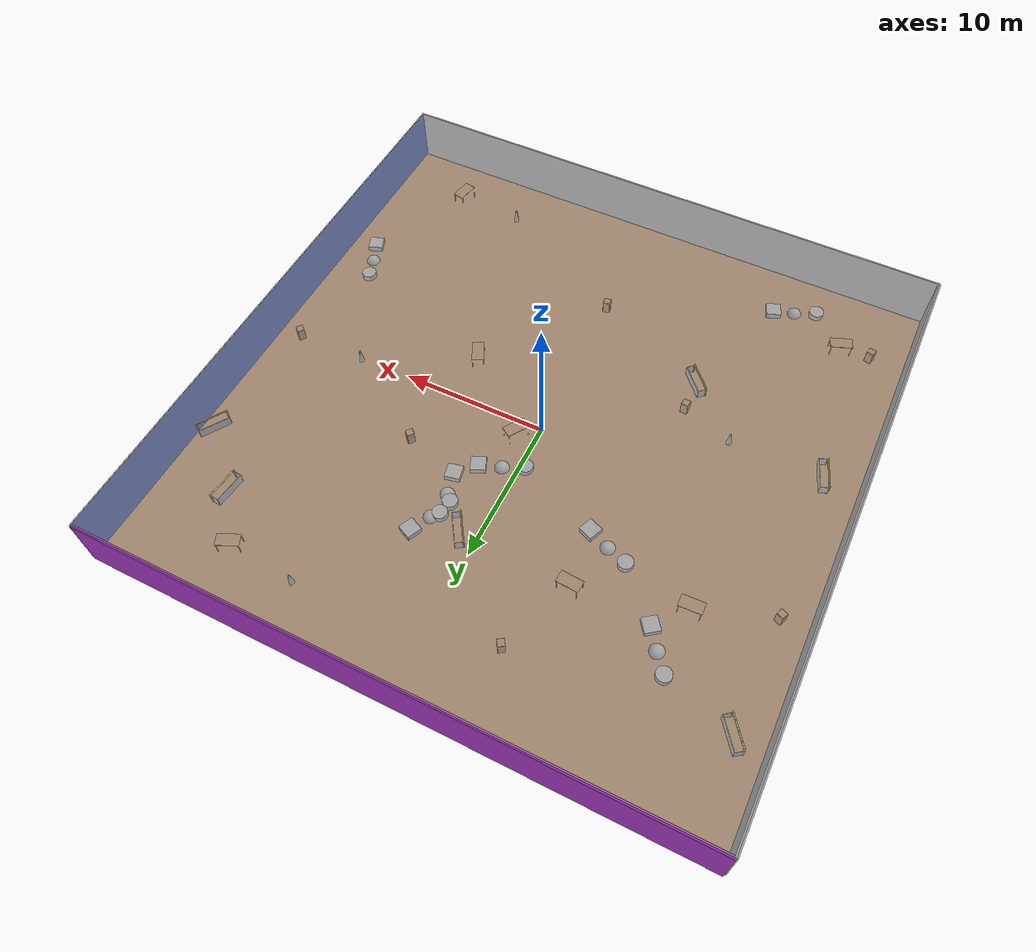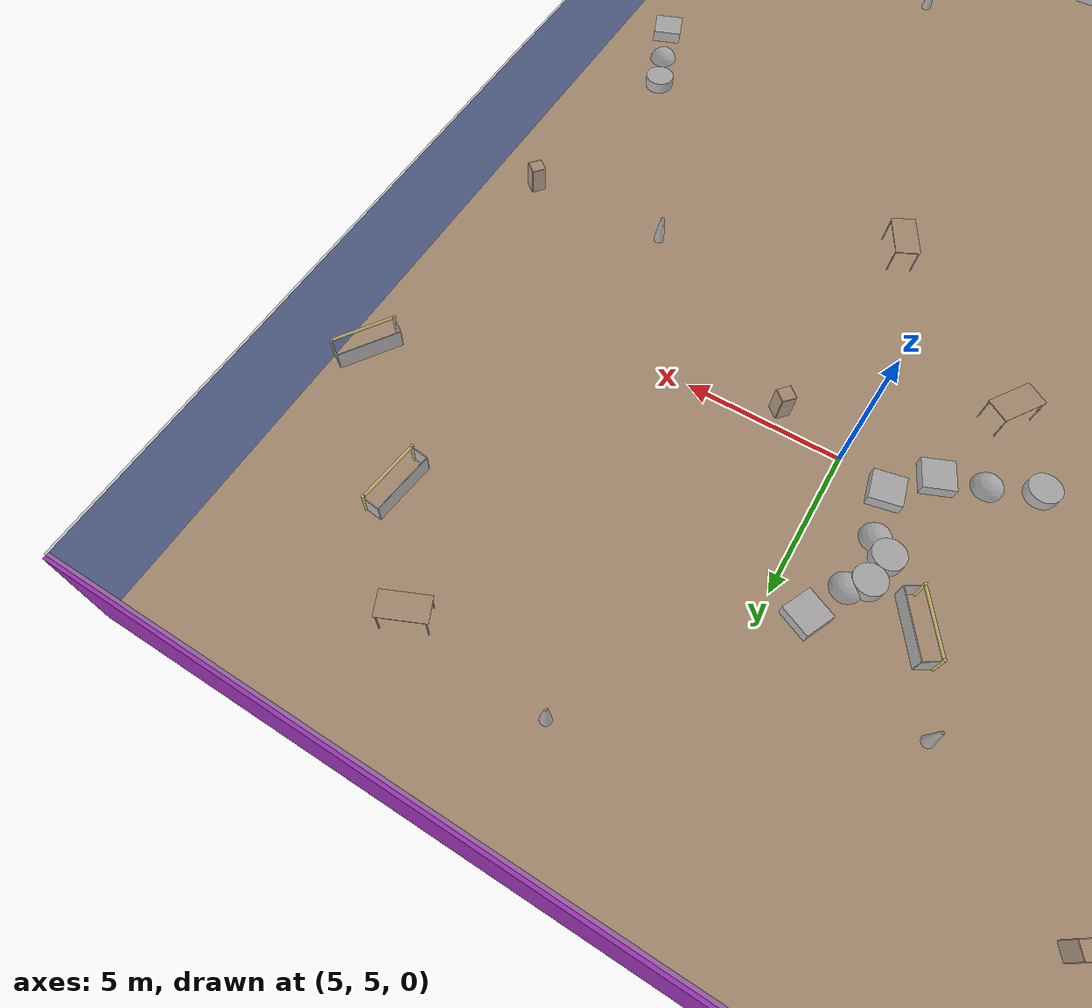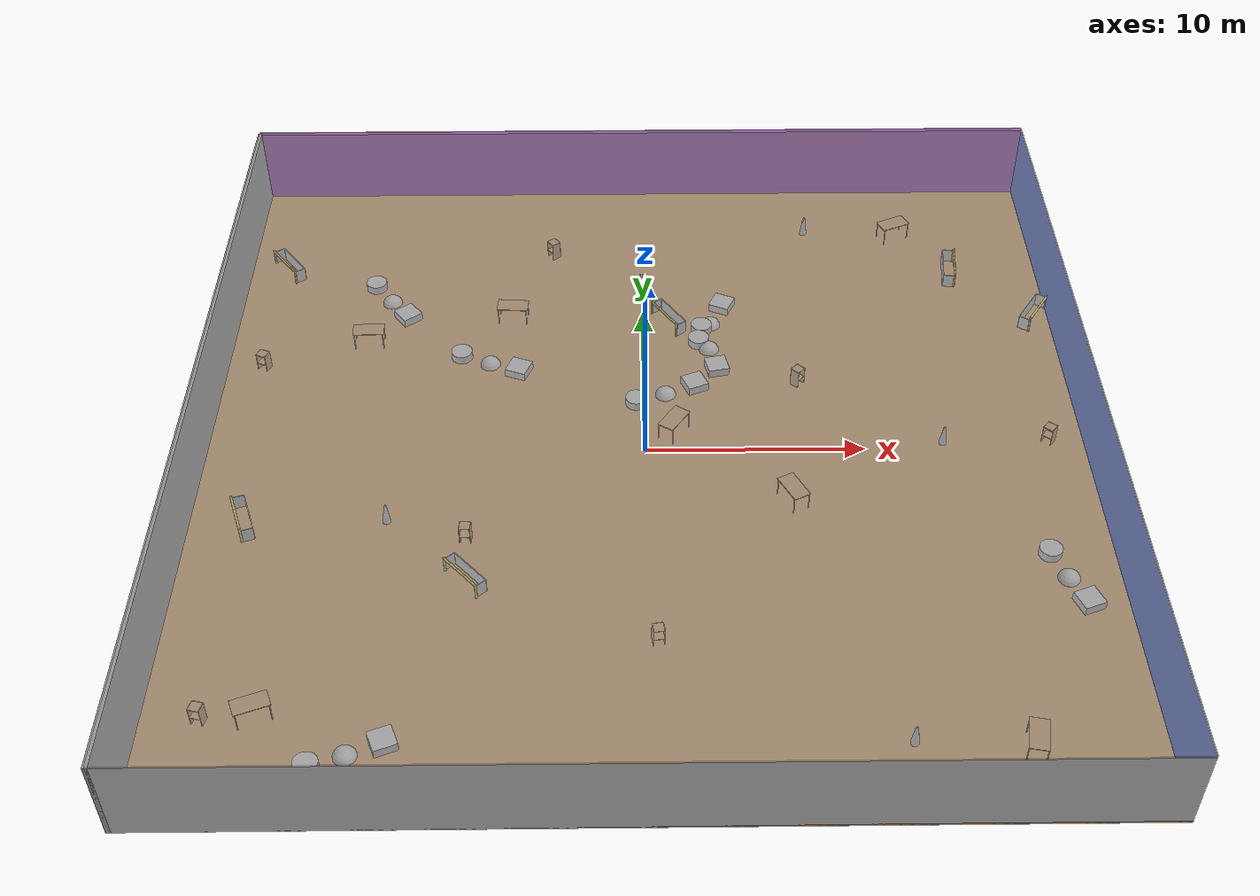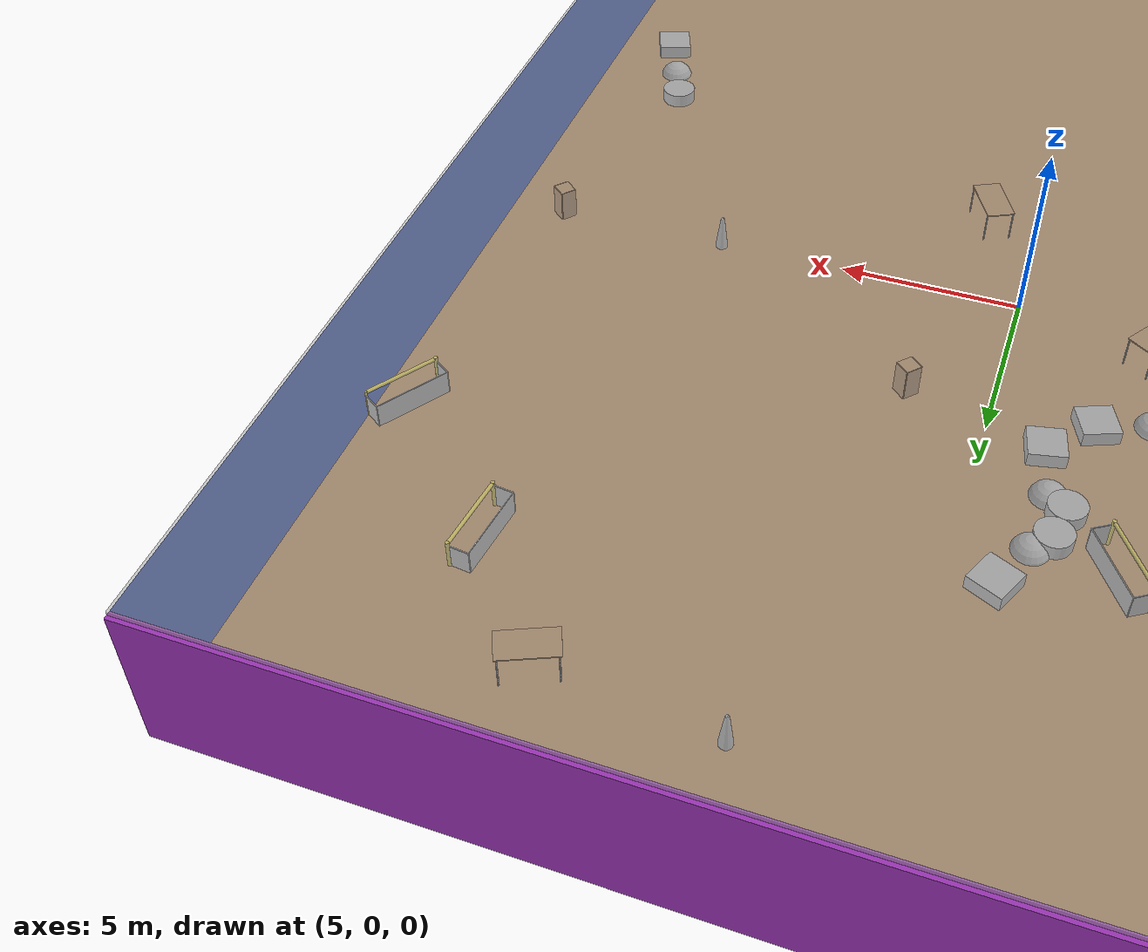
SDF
<sdf version="1.4">
 <world name="default">
  <physics type="ode">
   <max_step_size>0.001</max_step_size>
   <real_time_factor>1</real_time_factor>
   <real_time_update_rate>1000</real_time_update_rate>
   <gravity>0 0 -9.8</gravity>
  </physics>
  <scene><ambient>0.4 0.4 0.4 1</ambient><background>0.7 0.7 0.7 1</background><shadows>1</shadows></scene>
  <model name="Surrounding">
   <static>1</static>
   <link name="Ceiling">
    <collision name="Ceiling_Collision"><geometry><box><size>40 40 0.1</size></box></geometry></collision>
    <visual name="Ceiling_Visual">
     <geometry><box><size>40 40 0.1</size></box></geometry>
     <material>
      <script><uri>file://media/materials/scripts/gazebo.material</uri><name>Gazebo/GreyTransparent</name></script>
     </material>
    </visual>
    <pose>0 0 4.05 0 0 0</pose>
   </link>
   <link name="Wall_South">
    <collision name="Wall_South_Collision">
     <geometry><box><size>40 0 4</size></box></geometry>
     <pose>0 0 2 0 -0 0</pose>
    </collision>
    <visual name="Wall_South_Visual">
     <pose>0 0 2 0 -0 0</pose>
     <geometry><box><size>40 0 4</size></box></geometry>
     <material>
      <script><uri>file://media/materials/scripts/gazebo.material</uri><name>Gazebo/LightOn</name></script>
     </material>
    </visual>
    <velocity_decay><linear>0</linear><angular>0</angular></velocity_decay>
    <pose>0 -20 0 0 -0 0</pose>
   </link>
   <link name="Wall_East">
    <collision name="Wall_21_Collision">
     <geometry><box><size>40 0 4</size></box></geometry>
     <pose>0 0 2 0 -0 0</pose>
    </collision>
    <visual name="Wall_21_Visual">
     <pose>0 0 2 0 -0 0</pose>
     <geometry><box><size>40 0 4</size></box></geometry>
     <material>
      <script><uri>file://media/materials/scripts/gazebo.material</uri><name>Gazebo/BlueGlow</name></script>
     </material>
    </visual>
    <velocity_decay><linear>0</linear><angular>0</angular></velocity_decay>
    <pose>20 0 0 0 -0 1.5708</pose>
   </link>
   <link name="Wall_North">
    <collision name="Wall_22_Collision">
     <geometry><box><size>40 0.2 4</size></box></geometry>
     <pose>0 0 2 0 -0 0</pose>
    </collision>
    <visual name="Wall_22_Visual">
     <pose>0 0 2 0 -0 0</pose>
     <geometry><box><size>40 0.2 4</size></box></geometry>
     <material>
      <script><uri>file://media/materials/scripts/gazebo.material</uri><name>Gazebo/PurpleGlow</name></script>
     </material>
    </visual>
    <velocity_decay><linear>0</linear><angular>0</angular></velocity_decay>
    <pose>0 20 0 0 -0 0</pose>
   </link>
   <link name="Wall_West">
    <collision name="Wall_23_Collision">
     <geometry><box><size>40 0.2 4</size></box></geometry>
     <pose>0 0 2 0 -0 0</pose>
    </collision>
    <visual name="Wall_23_Visual">
     <pose>0 0 2 0 -0 0</pose>
     <geometry><box><size>40 0.2 4</size></box></geometry>
     <material>
      <script><uri>file://media/materials/scripts/gazebo.material</uri><name>Gazebo/Grey</name></script>
     </material>
    </visual>
    <velocity_decay><linear>0</linear><angular>0</angular></velocity_decay>
    <pose>-20 0 0 0 0 -1.5708</pose>
   </link>
   <link name="Ground_link">
    <collision name="collision">
     <pose>0 0 .05 0 -0 0</pose>
     <geometry><box><size>40 40 0.1</size></box></geometry>
    </collision>
    <visual name="visual">
     <pose>0 0 .05 0 -0 0</pose>
     <geometry><box><size>40 40 0.1</size></box></geometry>
     <material>
      <script><uri>file://media/materials/scripts/gazebo.material</uri><name>Gazebo/WoodPallet</name></script>
     </material>
    </visual>
   </link>
   <static>1</static>
  </model>
  <spherical_coordinates>
   <surface_model>EARTH_WGS84</surface_model>
   <latitude_deg>0</latitude_deg>
   <longitude_deg>0</longitude_deg>
   <elevation>0</elevation>
   <heading_deg>0</heading_deg>
  </spherical_coordinates>
  <light name="lightball_0" type="diffuse">
   <diffuse>0.8 0.8 0.8 1</diffuse>
   <specular>0.2 0.2 0.2 1</specular>
   <attenuation>
    <range>100</range>
    <constant>0.7</constant>
    <linear>0.01</linear>
    <quadratic>0.001</quadratic>
   </attenuation>
   <direction>-0.5 0.1 -0.9</direction>
   <pose>16.7396377912 18.5528470208 2.04238367935 0 0 0</pose>
  </light>
  <light name="lightball_1" type="diffuse">
   <diffuse>0.8 0.8 0.8 1</diffuse>
   <specular>0.2 0.2 0.2 1</specular>
   <attenuation>
    <range>100</range>
    <constant>0.7</constant>
    <linear>0.01</linear>
    <quadratic>0.001</quadratic>
   </attenuation>
   <direction>-0.5 0.1 -0.9</direction>
   <pose>18.9722573075 9.26306922568 0.672082649328 0 0 0</pose>
  </light>
  <light name="lightball_2" type="diffuse">
   <diffuse>0.8 0.8 0.8 1</diffuse>
   <specular>0.2 0.2 0.2 1</specular>
   <attenuation>
    <range>100</range>
    <constant>0.7</constant>
    <linear>0.01</linear>
    <quadratic>0.001</quadratic>
   </attenuation>
   <direction>-0.5 0.1 -0.9</direction>
   <pose>7.96845531034 -8.42015809306 1.44713730399 0 0 0</pose>
  </light>
  <light name="lightball_3" type="diffuse">
   <diffuse>0.8 0.8 0.8 1</diffuse>
   <specular>0.2 0.2 0.2 1</specular>
   <attenuation>
    <range>100</range>
    <constant>0.7</constant>
    <linear>0.01</linear>
    <quadratic>0.001</quadratic>
   </attenuation>
   <direction>-0.5 0.1 -0.9</direction>
   <pose>0.398397689132 2.42654706262 3.46005175922 0 0 0</pose>
  </light>
  <light name="lightball_4" type="diffuse">
   <diffuse>0.8 0.8 0.8 1</diffuse>
   <specular>0.2 0.2 0.2 1</specular>
   <attenuation>
    <range>100</range>
    <constant>0.7</constant>
    <linear>0.01</linear>
    <quadratic>0.001</quadratic>
   </attenuation>
   <direction>-0.5 0.1 -0.9</direction>
   <pose>0.337475035103 16.2464355308 1.47479923938 0 0 0</pose>
  </light>
  <light name="lightball_5" type="diffuse">
   <diffuse>0.8 0.8 0.8 1</diffuse>
   <specular>0.2 0.2 0.2 1</specular>
   <attenuation>
    <range>100</range>
    <constant>0.7</constant>
    <linear>0.01</linear>
    <quadratic>0.001</quadratic>
   </attenuation>
   <direction>-0.5 0.1 -0.9</direction>
   <pose>5.89862419069 5.34433789733 2.77562965161 0 0 0</pose>
  </light>
  <light name="lightball_6" type="diffuse">
   <diffuse>0.8 0.8 0.8 1</diffuse>
   <specular>0.2 0.2 0.2 1</specular>
   <attenuation>
    <range>100</range>
    <constant>0.7</constant>
    <linear>0.01</linear>
    <quadratic>0.001</quadratic>
   </attenuation>
   <direction>-0.5 0.1 -0.9</direction>
   <pose>18.5414036786 1.84324062968 1.94108907847 0 0 0</pose>
  </light>
  <light name="lightball_7" type="diffuse">
   <diffuse>0.8 0.8 0.8 1</diffuse>
   <specular>0.2 0.2 0.2 1</specular>
   <attenuation>
    <range>100</range>
    <constant>0.7</constant>
    <linear>0.01</linear>
    <quadratic>0.001</quadratic>
   </attenuation>
   <direction>-0.5 0.1 -0.9</direction>
   <pose>7.72373396382 -1.01820580773 1.98347059082 0 0 0</pose>
  </light>
  <light name="lightball_8" type="diffuse">
   <diffuse>0.8 0.8 0.8 1</diffuse>
   <specular>0.2 0.2 0.2 1</specular>
   <attenuation>
    <range>100</range>
    <constant>0.7</constant>
    <linear>0.01</linear>
    <quadratic>0.001</quadratic>
   </attenuation>
   <direction>-0.5 0.1 -0.9</direction>
   <pose>-11.7784685944 -13.6891886973 3.6767647824 0 0 0</pose>
  </light>
  <light name="lightball_9" type="diffuse">
   <diffuse>0.8 0.8 0.8 1</diffuse>
   <specular>0.2 0.2 0.2 1</specular>
   <attenuation>
    <range>100</range>
    <constant>0.7</constant>
    <linear>0.01</linear>
    <quadratic>0.001</quadratic>
   </attenuation>
   <direction>-0.5 0.1 -0.9</direction>
   <pose>-0.353371842931 8.64812811043 1.67017821576 0 0 0</pose>
  </light>
  <light name="lightball_10" type="diffuse">
   <diffuse>0.8 0.8 0.8 1</diffuse>
   <specular>0.2 0.2 0.2 1</specular>
   <attenuation>
    <range>100</range>
    <constant>0.7</constant>
    <linear>0.01</linear>
    <quadratic>0.001</quadratic>
   </attenuation>
   <direction>-0.5 0.1 -0.9</direction>
   <pose>13.1439863473 17.9309623585 2.09557921728 0 0 0</pose>
  </light>
  <light name="lightball_11" type="diffuse">
   <diffuse>0.8 0.8 0.8 1</diffuse>
   <specular>0.2 0.2 0.2 1</specular>
   <attenuation>
    <range>100</range>
    <constant>0.7</constant>
    <linear>0.01</linear>
    <quadratic>0.001</quadratic>
   </attenuation>
   <direction>-0.5 0.1 -0.9</direction>
   <pose>-16.8354724089 9.96160654601 2.94599780798 0 0 0</pose>
  </light>
  <include><uri>model://cabinet</uri><pose>-17.5520492781 -15.0260145132 0 0 0 1.32023698164</pose></include>
  <include>
   <uri>model://robocup_3Dsim_goal</uri>
   <pose>-17.7683788029 -4.56035031259 0 0 0 0.336031651197</pose>
  </include>
  <include><uri>model://cabinet</uri><pose>-18.155584181 5.82636145803 0 0 0 1.17261397218</pose></include>
  <include>
   <uri>model://robocup_3Dsim_goal</uri>
   <pose>-18.1911354095 13.1692704973 0 0 0 0.64951688303</pose>
  </include>
  <include><uri>model://table</uri><pose>-15.4716247472 -14.8770852138 0 0 0 0.367390982739</pose></include>
  <include><uri>model://table</uri><pose>-13.3065447131 7.55065341954 0 0 0 0.0393827144936</pose></include>
  <include>
   <uri>model://textured_shapes</uri>
   <pose>-11.6935322872 -16.7510372095 0 0 0 1.94351357747</pose>
  </include>
  <include>
   <uri>model://construction_cone</uri>
   <pose>-11.3093640395 -4.40709785873 0 0 0 1.55592067812</pose>
  </include>
  <include>
   <uri>model://textured_shapes</uri>
   <pose>-12.5180519518 10.6840923525 0 0 0 0.639977425873</pose>
  </include>
  <include>
   <uri>model://robocup_3Dsim_goal</uri>
   <pose>-7.86231565745 -8.04751149029 0 0 0 0.73845192385</pose>
  </include>
  <include><uri>model://cabinet</uri><pose>-7.80388937009 -5.55263380571 0 0 0 1.48987447014</pose></include>
  <include>
   <uri>model://textured_shapes</uri>
   <pose>-7.37088146636 5.94740144194 0 0 0 1.19420247633</pose>
  </include>
  <include><uri>model://table</uri><pose>-6.41086626223 9.33407187691 0 0 0 3.06951592183</pose></include>
  <include><uri>model://cabinet</uri><pose>-4.55053829757 14.4207000072 0 0 0 0.59637149914</pose></include>
  <include><uri>model://cabinet</uri><pose>0.384985393895 -11.2785357775 0 0 0 1.74157016071</pose></include>
  <include><uri>model://table</uri><pose>1.3079686639 1.09920085065 0 0 0 0.987966122968</pose></include>
  <include>
   <uri>model://textured_shapes</uri>
   <pose>0.980443869809 3.69397585073 0 0 0 1.96824687964</pose>
  </include>
  <include>
   <uri>model://robocup_3Dsim_goal</uri>
   <pose>1.00776448931 8.83949311894 0 0 0 0.581953348821</pose>
  </include>
  <include>
   <uri>model://construction_cone</uri>
   <pose>-0.0972566088526 11.6114341954 0 0 0 2.55304871771</pose>
  </include>
  <include>
   <uri>model://textured_shapes</uri>
   <pose>3.14096753246 6.9351397219 0 0 0 0.211770896461</pose>
  </include>
  <include>
   <uri>model://textured_shapes</uri>
   <pose>3.27599952321 8.79139125653 0 0 0 2.71532859465</pose>
  </include>
  <include><uri>model://table</uri><pose>6.44370207569 -3.34113567642 0 0 0 2.04350836754</pose></include>
  <include><uri>model://cabinet</uri><pose>7.22847789601 4.43373685741 0 0 0 2.4069788894</pose></include>
  <include>
   <uri>model://construction_cone</uri>
   <pose>10.1472641899 -16.3890416284 0 0 0 2.20777629904</pose>
  </include>
  <include>
   <uri>model://construction_cone</uri>
   <pose>8.44191361581 16.2398233152 0 0 0 1.63944664367</pose>
  </include>
  <include>
   <uri>model://construction_cone</uri>
   <pose>13.5600393047 0.26046999564 0 0 0 2.222002159</pose>
  </include>
  <include><uri>model://table</uri><pose>13.056089416 15.8697138699 0 0 0 0.419560535963</pose></include>
  <include><uri>model://table</uri><pose>14.7796518134 -16.6761242735 0 0 0 1.38378002294</pose></include>
  <include>
   <uri>model://robocup_3Dsim_goal</uri>
   <pose>15.8242278441 12.7336969012 0 0 0 3.03303382945</pose>
  </include>
  <include>
   <uri>model://textured_shapes</uri>
   <pose>17.7330592551 -8.02876200539 0 0 0 0.373429152273</pose>
  </include>
  <include><uri>model://cabinet</uri><pose>18.3850803507 0.325427512523 0 0 0 0.88206349278</pose></include>
  <include>
   <uri>model://robocup_3Dsim_goal</uri>
   <pose>19.4467406816 9.04081503101 0 0 0 2.56527565599</pose>
  </include>
 </world>
</sdf>

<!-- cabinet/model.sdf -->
<sdf version="1.5">
  <model name="cabinet">
    <static>true</static>
    <link name="cabinet_bottom_plate">
      <inertial>
        <pose>0 0 -1 0 0 0</pose>
        <inertia>
          <ixx>2.050000</ixx>
          <ixy>0</ixy>
          <ixz>0</ixz>
          <iyy>2.050000</iyy>
          <iyz>0</iyz>
          <izz>2.050000</izz>
        </inertia>
        <mass>25.000000</mass>
      </inertial>
      <collision name="cabinet_bottom_plate_geom">
        <pose>0 0 0.010000 0 0 0</pose>
        <geometry>
          <box>
            <size>0.450000 0.450000 0.020000</size>
          </box>
        </geometry>
      </collision>
      <visual name="cabinet_bottom_plate_geom_visual">
        <pose>0 0 0.010000 0 0 0</pose>
        <geometry>
          <box>
            <size>0.450000 0.450000 0.020000</size>
          </box>
        </geometry>
        <material>
          <script>
            <uri>model://media/materials/scripts/gazebo.material</uri>
            <name>Gazebo/Wood</name>
          </script>
        </material>
      </visual>
      <collision name="cabinet_bottom_plate_geom_cabinet_back_plate">
        <pose>0.235000 0 0.510000 0 0 0</pose>
        <geometry>
          <box>
            <size>0.020000 0.450000 1.020000</size>
          </box>
        </geometry>
      </collision>
      <visual name="cabinet_bottom_plate_geom_cabinet_back_plate_visual">
        <pose>0.235000 0 0.510000 0 0 0</pose>
        <geometry>
          <box>
            <size>0.020000 0.450000 1.020000</size>
          </box>
        </geometry>
        <material>
          <script>
            <uri>model://media/materials/scripts/gazebo.material</uri>
            <name>Gazebo/Wood</name>
          </script>
        </material>
      </visual>
      <collision name="cabinet_bottom_plate_geom_cabinet_left_plate">
        <pose>0 0.235000 0.510000 0 0 0</pose>
        <geometry>
          <box>
            <size>0.450000 0.020000 1.020000</size>
          </box>
        </geometry>
      </collision>
      <visual name="cabinet_bottom_plate_geom_cabinet_left_plate_visual">
        <pose>0 0.235000 0.510000 0 0 0</pose>
        <geometry>
          <box>
            <size>0.450000 0.020000 1.020000</size>
          </box>
        </geometry>
        <material>
          <script>
            <uri>model://media/materials/scripts/gazebo.material</uri>
            <name>Gazebo/Wood</name>
          </script>
        </material>
      </visual>
      <collision name="cabinet_bottom_plate_geom_cabinet_middle_plate">
        <pose>0 0 0.510000 0 0 0</pose>
        <geometry>
          <box>
            <size>0.450000 0.450000 0.020000</size>
          </box>
        </geometry>
      </collision>
      <visual name="cabinet_bottom_plate_geom_cabinet_middle_plate_visual">
        <pose>0 0 0.510000 0 0 0</pose>
        <geometry>
          <box>
            <size>0.450000 0.450000 0.020000</size>
          </box>
        </geometry>
        <material>
          <script>
            <uri>model://media/materials/scripts/gazebo.material</uri>
            <name>Gazebo/Wood</name>
          </script>
        </material>
      </visual>
      <collision name="cabinet_bottom_plate_geom_cabinet_right_plate">
        <pose>0 -0.235000 0.510000 0 0 0</pose>
        <geometry>
          <box>
            <size>0.450000 0.020000 1.020000</size>
          </box>
        </geometry>
      </collision>
      <visual name="cabinet_bottom_plate_geom_cabinet_right_plate_visual">
        <pose>0 -0.235000 0.510000 0 0 0</pose>
        <geometry>
          <box>
            <size>0.450000 0.020000 1.020000</size>
          </box>
        </geometry>
        <material>
          <script>
            <uri>model://media/materials/scripts/gazebo.material</uri>
            <name>Gazebo/Wood</name>
          </script>
        </material>
      </visual>
      <collision name="cabinet_bottom_plate_geom_cabinet_top_plate">
        <pose>0 0 1.010000 0 0 0</pose>
        <geometry>
          <box>
            <size>0.450000 0.450000 0.020000</size>
          </box>
        </geometry>
      </collision>
      <visual name="cabinet_bottom_plate_geom_cabinet_top_plate_visual">
        <pose>0 0 1.010000 0 0 0</pose>
        <geometry>
          <box>
            <size>0.450000 0.450000 0.020000</size>
          </box>
        </geometry>
        <material>
          <script>
            <uri>model://media/materials/scripts/gazebo.material</uri>
            <name>Gazebo/Wood</name>
          </script>
        </material>
      </visual>
    </link>
  </model>
</sdf>

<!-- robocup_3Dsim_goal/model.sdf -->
<sdf version="1.5">
  <model name="robocup_3d_goal">
    <static>true</static>
    <link name="left_post">
      <pose>0 1.05 0.45 0 0 0</pose>
      <collision name="collision">
        <geometry>
          <cylinder>
            <radius>0.05</radius>
            <length>0.9</length>
          </cylinder>
        </geometry>
      </collision>
      <visual name="visual">
        <geometry>
          <cylinder>
            <radius>0.05</radius>
            <length>0.9</length>
          </cylinder>
        </geometry>
        <material>
          <script>
            <uri>file://media/materials/scripts/gazebo.material</uri>
            <name>Gazebo/ZincYellow</name>
          </script>
        </material>
      </visual>
    </link>
    <link name="left_support_horiz_lower">
      <pose>0.30 1.05 0.01 0 0 0</pose>
      <collision name="collision">
        <geometry>
          <box>
            <size>0.50 0.02 0.02</size>
          </box>
        </geometry>
      </collision>
      <visual name="visual">
        <geometry>
          <box>
            <size>0.50 0.02 0.02</size>
          </box>
        </geometry>
        <material>
          <script>
            <uri>file://media/materials/scripts/gazebo.material</uri>
            <name>Gazebo/White</name>
          </script>
        </material>
      </visual>
    </link>
    <link name="left_support_horiz_upper">
      <pose>0.30 1.05 0.79 0 0 0</pose>
      <collision name="collision">
        <geometry>
          <box>
            <size>0.50 0.02 0.02</size>
          </box>
        </geometry>
      </collision>
      <visual name="visual">
        <geometry>
          <box>
            <size>0.50 0.02 0.02</size>
          </box>
        </geometry>
        <material>
          <script>
            <uri>file://media/materials/scripts/gazebo.material</uri>
            <name>Gazebo/White</name>
          </script>
        </material>
      </visual>
    </link>
    <link name="left_support_vertical">
      <pose>0.56 1.05 0.4 0 1.5708 0</pose>
      <collision name="collision">
        <geometry>
          <box>
            <size>0.80 0.02 0.02</size>
          </box>
        </geometry>
      </collision>
      <visual name="visual">
        <geometry>
          <box>
            <size>0.80 0.02 0.02</size>
          </box>
        </geometry>
        <material>
          <script>
            <uri>file://media/materials/scripts/gazebo.material</uri>
            <name>Gazebo/White</name>
          </script>
        </material>
      </visual>
    </link>
    <link name="right_support_horiz_lower">
      <pose>0.30 -1.05 0.01 0 0 0</pose>
      <collision name="collision">
        <geometry>
          <box>
            <size>0.50 0.02 0.02</size>
          </box>
        </geometry>
      </collision>
      <visual name="visual">
        <geometry>
          <box>
            <size>0.50 0.02 0.02</size>
          </box>
        </geometry>
        <material>
          <script>
            <uri>file://media/materials/scripts/gazebo.material</uri>
            <name>Gazebo/White</name>
          </script>
        </material>
      </visual>
    </link>
    <link name="right_support_horiz_upper">
      <pose>0.30 -1.05 0.79 0 0 0</pose>
      <collision name="collision">
        <geometry>
          <box>
            <size>0.50 0.02 0.02</size>
          </box>
        </geometry>
      </collision>
      <visual name="visual">
        <geometry>
          <box>
            <size>0.50 0.02 0.02</size>
          </box>
        </geometry>
        <material>
          <script>
            <uri>file://media/materials/scripts/gazebo.material</uri>
            <name>Gazebo/White</name>
          </script>
        </material>
      </visual>
    </link>
    <link name="right_support_vertical">
      <pose>0.56 -1.05 0.4 0 1.5708 0</pose>
      <collision name="collision">
        <geometry>
          <box>
            <size>0.80 0.02 0.02</size>
          </box>
        </geometry>
      </collision>
      <visual name="visual">
        <geometry>
          <box>
            <size>0.80 0.02 0.02</size>
          </box>
        </geometry>
        <material>
          <script>
            <uri>file://media/materials/scripts/gazebo.material</uri>
            <name>Gazebo/White</name>
          </script>
        </material>
      </visual>
    </link>
    <link name="center_support_horiz_lower">
      <pose>0.56 0 0.01 0 1.5708 0</pose>
      <collision name="collision">
        <geometry>
          <box>
            <size>0.02 2.08 0.02</size>
          </box>
        </geometry>
      </collision>
      <visual name="visual">
        <geometry>
          <box>
            <size>0.02 2.08 0.02</size>
          </box>
        </geometry>
        <material>
          <script>
            <uri>file://media/materials/scripts/gazebo.material</uri>
            <name>Gazebo/White</name>
          </script>
        </material>
      </visual>
    </link>
    <link name="center_support_horiz_upper">
      <pose>0.56 0 0.79 0 1.5708 0</pose>
      <collision name="collision">
        <geometry>
          <box>
            <size>0.02 2.08 0.02</size>
          </box>
        </geometry>
      </collision>
      <visual name="visual">
        <geometry>
          <box>
            <size>0.02 2.08 0.02</size>
          </box>
        </geometry>
        <material>
          <script>
            <uri>file://media/materials/scripts/gazebo.material</uri>
            <name>Gazebo/White</name>
          </script>
        </material>
      </visual>
    </link>
    <link name="right_post">
      <pose>0 -1.05 0.45 0 0 0</pose>
      <collision name="collision">
        <geometry>
          <cylinder>
            <radius>0.05</radius>
            <length>0.9</length>
          </cylinder>
        </geometry>
      </collision>
      <visual name="visual">
        <geometry>
          <cylinder>
            <radius>0.05</radius>
            <length>0.9</length>
          </cylinder>
        </geometry>
        <material>
          <script>
            <uri>file://media/materials/scripts/gazebo.material</uri>
            <name>Gazebo/ZincYellow</name>
          </script>
        </material>
      </visual>
    </link>
    <link name="crossbar">
      <pose>0 0 0.85 1.57 1.57 0</pose>
      <collision name="collision">
        <geometry>
          <cylinder>
            <radius>0.05</radius>
            <length>2.0</length>
          </cylinder>
        </geometry>
      </collision>
      <visual name="visual">
        <geometry>
          <cylinder>
            <radius>0.05</radius>
            <length>2.0</length>
          </cylinder>
        </geometry>
        <material>
          <script>
            <uri>file://media/materials/scripts/gazebo.material</uri>
            <name>Gazebo/ZincYellow</name>
          </script>
        </material>
      </visual>
    </link>
    <link name="center_net">
      <pose>0.56 0 0.40 0 0 0</pose>
      <collision name="collision">
        <geometry>
          <box>
            <size>0.01 2.1 0.80</size>
          </box>
        </geometry>
      </collision>
      <visual name="visual">
        <geometry>
          <box>
            <size>0.01 2.1 0.80</size>
          </box>
        </geometry>
        <material>
          <script>
            <uri>model://../model_source/models/robocup09_spl_field/materials/scripts/</uri>
            <uri>model://../model_source/models/robocup09_spl_field/materials/textures/</uri>
            <name>RoboCup/Net</name>
          </script>
        </material>
      </visual>
    </link>
    <link name="left_net">
      <pose>0.30 1.05 0.40 0 0 0</pose>
      <collision name="collision">
        <geometry>
          <box>
            <size>0.50 0.01 0.76</size>
          </box>
        </geometry>
      </collision>
      <visual name="visual">
        <geometry>
          <box>
            <size>0.50 0.01 0.76</size>
          </box>
        </geometry>
        <material>
          <script>
            <uri>model://../model_source/models/robocup09_spl_field/materials/scripts/</uri>
            <uri>model://../model_source/models/robocup09_spl_field/materials/textures/</uri>
            <name>RoboCup/Net</name>
          </script>
        </material>
      </visual>
    </link>
    <link name="right_net">
      <pose>0.30 -1.05 0.40 0 0 0</pose>
      <collision name="collision">
        <geometry>
          <box>
            <size>0.50 0.01 0.76</size>
          </box>
        </geometry>
      </collision>
      <visual name="visual">
        <geometry>
          <box>
            <size>0.50 0.01 0.76</size>
          </box>
        </geometry>
        <material>
          <script>
            <uri>model://../model_source/models/robocup09_spl_field/materials/scripts/</uri>
            <uri>model://../model_source/models/robocup09_spl_field/materials/textures/</uri>
            <name>RoboCup/Net</name>
          </script>
        </material>
      </visual>
    </link>
  </model>
</sdf>

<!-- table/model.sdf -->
<sdf version="1.5">
  <model name="table">
    <static>true</static>
    <link name="link">
      <collision name="surface">
        <pose>0 0 1.0 0 0 0</pose>
        <geometry>
          <box>
            <size>1.5 0.8 0.03</size>
          </box>
        </geometry>
        <surface>
          <friction>
            <ode>
              <mu>0.6</mu>
              <mu2>0.6</mu2>
            </ode>
          </friction>
        </surface>
      </collision>
      <visual name="visual1">
        <pose>0 0 1.0 0 0 0</pose>
        <geometry>
          <box>
            <size>1.5 0.8 0.03</size>
          </box>
        </geometry>
        <material>
          <script>
            <uri>model://media/materials/scripts/gazebo.material</uri>
            <name>Gazebo/Wood</name>
          </script>
        </material>
      </visual>
      <collision name="front_left_leg">
        <pose>0.68 0.38 0.5 0 0 0</pose>
        <geometry>
          <cylinder>
            <radius>0.02</radius>
            <length>1.0</length>
          </cylinder>
        </geometry>
      </collision>
      <visual name="front_left_leg">
        <pose>0.68 0.38 0.5 0 0 0</pose>
        <geometry>
          <cylinder>
            <radius>0.02</radius>
            <length>1.0</length>
          </cylinder>
        </geometry>
        <material>
          <script>
            <uri>model://media/materials/scripts/gazebo.material</uri>
            <name>Gazebo/Grey</name>
          </script>
        </material>
      </visual>
      <collision name="front_right_leg">
        <pose>0.68 -0.38 0.5 0 0 0</pose>
        <geometry>
          <cylinder>
            <radius>0.02</radius>
            <length>1.0</length>
          </cylinder>
        </geometry>
      </collision>
      <visual name="front_right_leg">
        <pose>0.68 -0.38 0.5 0 0 0</pose>
        <geometry>
          <cylinder>
            <radius>0.02</radius>
            <length>1.0</length>
          </cylinder>
        </geometry>
        <material>
          <script>
            <uri>model://media/materials/scripts/gazebo.material</uri>
            <name>Gazebo/Grey</name>
          </script>
        </material>
      </visual>
      <collision name="back_right_leg">
        <pose>-0.68 -0.38 0.5 0 0 0</pose>
        <geometry>
          <cylinder>
            <radius>0.02</radius>
            <length>1.0</length>
          </cylinder>
        </geometry>
      </collision>
      <visual name="back_right_leg">
        <pose>-0.68 -0.38 0.5 0 0 0</pose>
        <geometry>
          <cylinder>
            <radius>0.02</radius>
            <length>1.0</length>
          </cylinder>
        </geometry>
        <material>
          <script>
            <uri>model://media/materials/scripts/gazebo.material</uri>
            <name>Gazebo/Grey</name>
          </script>
        </material>
      </visual>
      <collision name="back_left_leg">
        <pose>-0.68 0.38 0.5 0 0 0</pose>
        <geometry>
          <cylinder>
            <radius>0.02</radius>
            <length>1.0</length>
          </cylinder>
        </geometry>
      </collision>
      <visual name="back_left_leg">
        <pose>-0.68 0.38 0.5 0 0 0</pose>
        <geometry>
          <cylinder>
            <radius>0.02</radius>
            <length>1.0</length>
          </cylinder>
        </geometry>
        <material>
          <script>
            <uri>model://media/materials/scripts/gazebo.material</uri>
            <name>Gazebo/Grey</name>
          </script>
        </material>
      </visual>
    </link>
  </model>
</sdf>

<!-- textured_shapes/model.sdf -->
<sdf version="1.6">
  <model name="textured_shapes">
    <pose>0 0 0.5 0 0 0</pose>
    <link name="box">
      <pose>0 -1.5 0 0 0 0</pose>
      <collision name="collision">
        <geometry>
          <box>
            <size>1 1 1</size>
          </box>
        </geometry>
      </collision>
      <visual name="visual">
        <geometry>
          <box>
            <size>1 1 1</size>
          </box>
        </geometry>
        <material>
          <script>
            <uri>model://../model_source/models/textured_shapes/materials/scripts</uri>
            <uri>model://../model_source/models/textured_shapes/materials/textures</uri>
            <name>TexturedShape/Squares</name>
          </script>
        </material>
      </visual>
    </link>
    <link name="sphere">
      <collision name="collision">
        <geometry>
          <sphere>
            <radius>0.5</radius>
          </sphere>
        </geometry>
      </collision>
      <visual name="visual">
        <geometry>
          <sphere>
            <radius>0.5</radius>
          </sphere>
        </geometry>
        <material>
          <script>
            <uri>model://../model_source/models/textured_shapes/materials/scripts</uri>
            <uri>model://../model_source/models/textured_shapes/materials/textures</uri>
            <name>TexturedShape/Squares</name>
          </script>
        </material>
      </visual>
    </link>
    <link name="cylinder">
      <pose>0 1.5 0 0 0 0</pose>
      <collision name="collision">
        <geometry>
          <cylinder>
            <radius>0.5</radius>
            <length>1</length>
          </cylinder>
        </geometry>
      </collision>
      <visual name="visual">
        <geometry>
          <cylinder>
            <radius>0.5</radius>
            <length>1</length>
          </cylinder>
        </geometry>
        <material>
          <script>
            <uri>model://../model_source/models/textured_shapes/materials/scripts</uri>
            <uri>model://../model_source/models/textured_shapes/materials/textures</uri>
            <name>TexturedShape/Squares</name>
          </script>
        </material>
      </visual>
    </link>
  </model>
</sdf>

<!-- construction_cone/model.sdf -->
<sdf version="1.5">
  <model name="Construction Cone">
    <link name="link">
      <collision name="collision">
        <geometry>
          <mesh>
            <scale>10 10 10</scale>
            <uri>file://isr-testbed/construction_cone/meshes/construction_cone.dae</uri>
          </mesh>
        </geometry>
      </collision>
      <visual name="visual">
        <geometry>
          <mesh>
            <scale>10 10 10</scale>
            <uri>file://isr-testbed/construction_cone/meshes/construction_cone.dae</uri>
          </mesh>
        </geometry>
      </visual>
    </link>
  </model>
</sdf>
